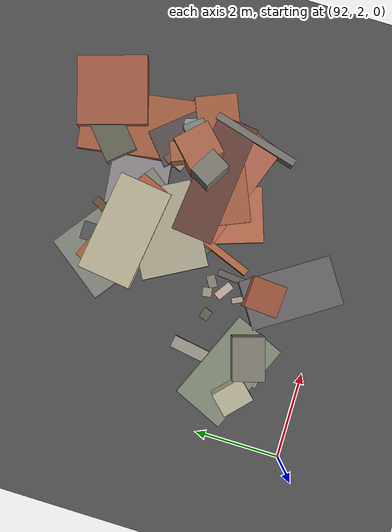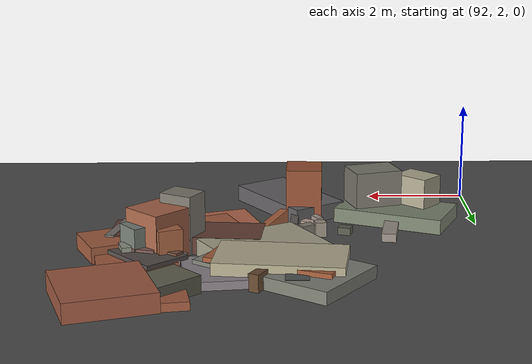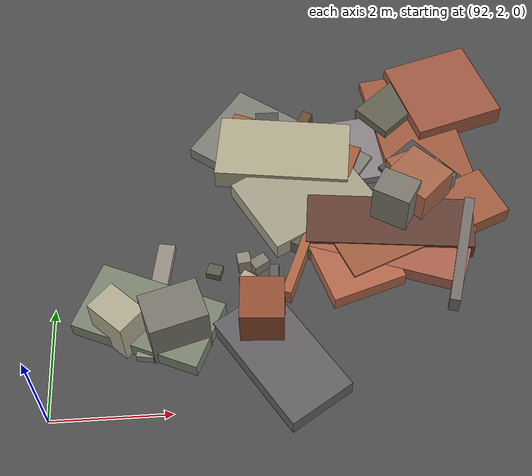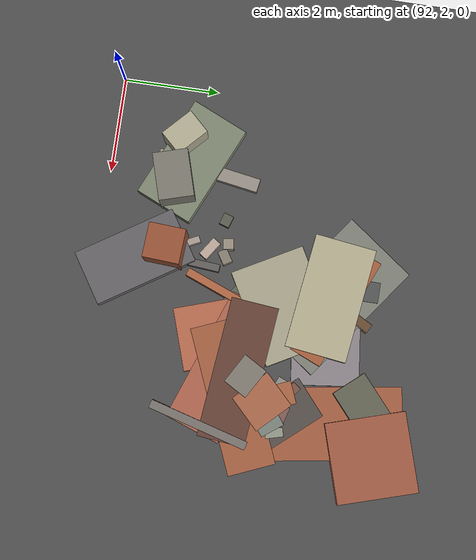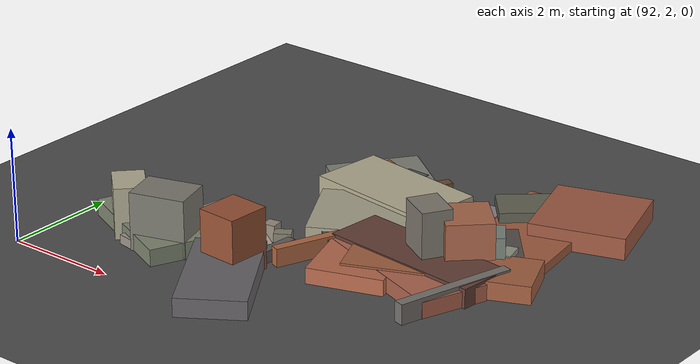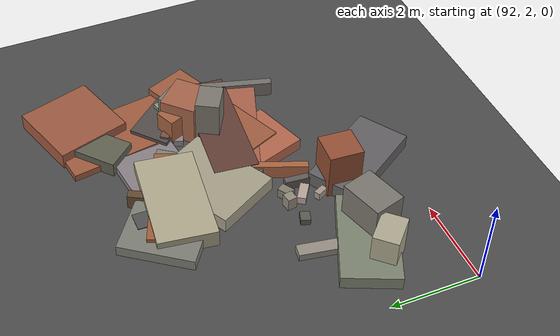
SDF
<sdf version="1.6">
 <world name="navitas_arena">
  <model name="ground_plane">
   <static>true</static>
   <link name="link">
    <collision name="collision">
     <geometry><plane><normal>0 0 1</normal><size>400 400</size></plane></geometry>
     <surface><friction><ode><mu>0.800</mu><mu2>0.800</mu2></ode></friction></surface>
    </collision>
    <visual name="visual">
     <cast_shadows>false</cast_shadows>
     <geometry><plane><normal>0 0 1</normal><size>400 400</size></plane></geometry>
     <material>
      <specular>0.04 0.04 0.04 1</specular>
      <script>
       <uri>file://media/materials/scripts/navitas_asphalt.material</uri>
       <name>Navitas/RealArenaAsphalt</name>
      </script>
     </material>
    </visual>
   </link>
  </model>
  <model name="deb_zor_22">
   <static>true</static>
   <pose>99.009 7.795 0.000 0 0 0</pose>
   <link name="link">
    <collision name="col_0">
     <pose>0.150 0.450 0.188 0.000 0.000 0.298</pose>
     <geometry><box><size>1.670 1.680 0.377</size></box></geometry>
    </collision>
    <visual name="vis_0">
     <pose>0.150 0.450 0.188 0.000 0.000 0.298</pose>
     <geometry><box><size>1.670 1.680 0.377</size></box></geometry>
     <material>
      <ambient>0.57 0.32 0.24 1</ambient>
      <diffuse>0.62 0.35 0.26 1</diffuse>
      <specular>0.05 0.05 0.045 1</specular>
     </material>
    </visual>
    <collision name="col_1">
     <pose>-0.168 0.030 0.184 0.000 0.000 2.330</pose>
     <geometry><box><size>0.727 0.487 0.368</size></box></geometry>
    </collision>
    <visual name="vis_1">
     <pose>-0.168 0.030 0.184 0.000 0.000 2.330</pose>
     <geometry><box><size>0.727 0.487 0.368</size></box></geometry>
     <material>
      <ambient>0.51 0.33 0.30 1</ambient>
      <diffuse>0.55 0.36 0.32 1</diffuse>
      <specular>0.05 0.05 0.045 1</specular>
     </material>
    </visual>
    <collision name="col_2">
     <pose>-0.404 -0.531 0.081 0.000 0.000 1.722</pose>
     <geometry><box><size>3.109 1.506 0.163</size></box></geometry>
    </collision>
    <visual name="vis_2">
     <pose>-0.404 -0.531 0.081 0.000 0.000 1.722</pose>
     <geometry><box><size>3.109 1.506 0.163</size></box></geometry>
     <material>
      <ambient>0.58 0.34 0.23 1</ambient>
      <diffuse>0.63 0.36 0.25 1</diffuse>
      <specular>0.05 0.05 0.045 1</specular>
     </material>
    </visual>
    <collision name="col_3">
     <pose>-0.752 0.249 0.169 0.000 0.000 0.716</pose>
     <geometry><box><size>1.427 0.773 0.338</size></box></geometry>
    </collision>
    <visual name="vis_3">
     <pose>-0.752 0.249 0.169 0.000 0.000 0.716</pose>
     <geometry><box><size>1.427 0.773 0.338</size></box></geometry>
     <material>
      <ambient>0.35 0.35 0.29 1</ambient>
      <diffuse>0.38 0.38 0.32 1</diffuse>
      <specular>0.05 0.05 0.045 1</specular>
     </material>
    </visual>
    <collision name="col_4">
     <pose>0.288 0.665 0.170 0.000 0.000 0.157</pose>
     <geometry><box><size>1.024 0.232 0.340</size></box></geometry>
    </collision>
    <visual name="vis_4">
     <pose>0.288 0.665 0.170 0.000 0.000 0.157</pose>
     <geometry><box><size>1.024 0.232 0.340</size></box></geometry>
     <material>
      <ambient>0.40 0.27 0.20 1</ambient>
      <diffuse>0.43 0.29 0.22 1</diffuse>
      <specular>0.05 0.05 0.045 1</specular>
     </material>
    </visual>
   </link>
  </model>
  <model name="deb_zor_63">
   <static>true</static>
   <pose>98.781 6.018 0.000 0 0 0</pose>
   <link name="link">
    <collision name="col_0">
     <pose>-0.119 -0.038 0.342 0.000 0.000 0.638</pose>
     <geometry><box><size>0.601 0.512 0.684</size></box></geometry>
    </collision>
    <visual name="vis_0">
     <pose>-0.119 -0.038 0.342 0.000 0.000 0.638</pose>
     <geometry><box><size>0.601 0.512 0.684</size></box></geometry>
     <material>
      <ambient>0.44 0.46 0.44 1</ambient>
      <diffuse>0.47 0.50 0.47 1</diffuse>
      <specular>0.05 0.05 0.045 1</specular>
     </material>
    </visual>
    <collision name="col_1">
     <pose>-0.565 0.085 0.349 0.000 0.000 1.962</pose>
     <geometry><box><size>0.778 0.471 0.699</size></box></geometry>
    </collision>
    <visual name="vis_1">
     <pose>-0.565 0.085 0.349 0.000 0.000 1.962</pose>
     <geometry><box><size>0.778 0.471 0.699</size></box></geometry>
     <material>
      <ambient>0.60 0.36 0.24 1</ambient>
      <diffuse>0.65 0.39 0.26 1</diffuse>
      <specular>0.05 0.05 0.045 1</specular>
     </material>
    </visual>
    <collision name="col_2">
     <pose>-0.227 0.195 0.150 0.000 0.000 1.291</pose>
     <geometry><box><size>0.380 0.431 0.301</size></box></geometry>
    </collision>
    <visual name="vis_2">
     <pose>-0.227 0.195 0.150 0.000 0.000 1.291</pose>
     <geometry><box><size>0.380 0.431 0.301</size></box></geometry>
     <material>
      <ambient>0.46 0.33 0.30 1</ambient>
      <diffuse>0.49 0.35 0.33 1</diffuse>
      <specular>0.05 0.05 0.045 1</specular>
     </material>
    </visual>
    <collision name="col_3">
     <pose>-0.488 0.180 0.093 0.000 0.000 2.079</pose>
     <geometry><box><size>1.215 0.234 0.185</size></box></geometry>
    </collision>
    <visual name="vis_3">
     <pose>-0.488 0.180 0.093 0.000 0.000 2.079</pose>
     <geometry><box><size>1.215 0.234 0.185</size></box></geometry>
     <material>
      <ambient>0.67 0.61 0.52 1</ambient>
      <diffuse>0.73 0.66 0.57 1</diffuse>
      <specular>0.05 0.05 0.045 1</specular>
     </material>
    </visual>
    <collision name="col_4">
     <pose>0.168 0.182 0.170 0.000 0.000 1.840</pose>
     <geometry><box><size>0.373 0.191 0.340</size></box></geometry>
    </collision>
    <visual name="vis_4">
     <pose>0.168 0.182 0.170 0.000 0.000 1.840</pose>
     <geometry><box><size>0.373 0.191 0.340</size></box></geometry>
     <material>
      <ambient>0.52 0.54 0.48 1</ambient>
      <diffuse>0.56 0.58 0.52 1</diffuse>
      <specular>0.05 0.05 0.045 1</specular>
     </material>
    </visual>
   </link>
  </model>
  <model name="deb_zor_130">
   <static>true</static>
   <pose>95.356 3.499 0.000 0 0 0</pose>
   <link name="link">
    <collision name="col_0">
     <pose>0.409 -0.680 0.165 0.000 0.000 2.145</pose>
     <geometry><box><size>2.217 1.182 0.330</size></box></geometry>
    </collision>
    <visual name="vis_0">
     <pose>0.409 -0.680 0.165 0.000 0.000 2.145</pose>
     <geometry><box><size>2.217 1.182 0.330</size></box></geometry>
     <material>
      <ambient>0.36 0.35 0.36 1</ambient>
      <diffuse>0.39 0.38 0.39 1</diffuse>
      <specular>0.05 0.05 0.045 1</specular>
     </material>
    </visual>
    <collision name="col_1">
     <pose>0.339 0.514 0.108 0.000 0.000 1.487</pose>
     <geometry><box><size>1.148 0.154 0.217</size></box></geometry>
    </collision>
    <visual name="vis_1">
     <pose>0.339 0.514 0.108 0.000 0.000 1.487</pose>
     <geometry><box><size>1.148 0.154 0.217</size></box></geometry>
     <material>
      <ambient>0.35 0.33 0.32 1</ambient>
      <diffuse>0.38 0.36 0.35 1</diffuse>
      <specular>0.05 0.05 0.045 1</specular>
     </material>
    </visual>
    <collision name="col_2">
     <pose>0.108 0.018 0.086 0.000 0.000 2.031</pose>
     <geometry><box><size>1.273 0.137 0.173</size></box></geometry>
    </collision>
    <visual name="vis_2">
     <pose>0.108 0.018 0.086 0.000 0.000 2.031</pose>
     <geometry><box><size>1.273 0.137 0.173</size></box></geometry>
     <material>
      <ambient>0.60 0.55 0.51 1</ambient>
      <diffuse>0.65 0.60 0.56 1</diffuse>
      <specular>0.05 0.05 0.045 1</specular>
     </material>
    </visual>
    <collision name="col_3">
     <pose>0.135 -0.059 0.546 0.000 0.000 -0.062</pose>
     <geometry><box><size>0.724 0.761 1.092</size></box></geometry>
    </collision>
    <visual name="vis_3">
     <pose>0.135 -0.059 0.546 0.000 0.000 -0.062</pose>
     <geometry><box><size>0.724 0.761 1.092</size></box></geometry>
     <material>
      <ambient>0.55 0.30 0.20 1</ambient>
      <diffuse>0.59 0.32 0.21 1</diffuse>
      <specular>0.05 0.05 0.045 1</specular>
     </material>
    </visual>
   </link>
  </model>
  <model name="deb_zor_140">
   <static>true</static>
   <pose>98.525 5.848 0.000 0 0 0</pose>
   <link name="link">
    <collision name="col_0">
     <pose>0.259 0.213 0.124 0.000 0.000 2.281</pose>
     <geometry><box><size>2.070 0.927 0.247</size></box></geometry>
    </collision>
    <visual name="vis_0">
     <pose>0.259 0.213 0.124 0.000 0.000 2.281</pose>
     <geometry><box><size>2.070 0.927 0.247</size></box></geometry>
     <material>
      <ambient>0.30 0.27 0.26 1</ambient>
      <diffuse>0.33 0.30 0.29 1</diffuse>
      <specular>0.05 0.05 0.045 1</specular>
     </material>
    </visual>
    <collision name="col_1">
     <pose>-0.198 -0.594 0.159 0.000 0.000 3.542</pose>
     <geometry><box><size>3.115 1.005 0.317</size></box></geometry>
    </collision>
    <visual name="vis_1">
     <pose>-0.198 -0.594 0.159 0.000 0.000 3.542</pose>
     <geometry><box><size>3.115 1.005 0.317</size></box></geometry>
     <material>
      <ambient>0.59 0.34 0.24 1</ambient>
      <diffuse>0.63 0.37 0.25 1</diffuse>
      <specular>0.05 0.05 0.045 1</specular>
     </material>
    </visual>
    <collision name="col_2">
     <pose>-0.090 0.174 0.079 0.000 0.000 2.741</pose>
     <geometry><box><size>1.298 0.275 0.157</size></box></geometry>
    </collision>
    <visual name="vis_2">
     <pose>-0.090 0.174 0.079 0.000 0.000 2.741</pose>
     <geometry><box><size>1.298 0.275 0.157</size></box></geometry>
     <material>
      <ambient>0.52 0.49 0.47 1</ambient>
      <diffuse>0.56 0.53 0.51 1</diffuse>
      <specular>0.05 0.05 0.045 1</specular>
     </material>
    </visual>
    <collision name="col_3">
     <pose>-0.170 0.008 0.478 0.000 0.000 2.346</pose>
     <geometry><box><size>0.873 0.813 0.957</size></box></geometry>
    </collision>
    <visual name="vis_3">
     <pose>-0.170 0.008 0.478 0.000 0.000 2.346</pose>
     <geometry><box><size>0.873 0.813 0.957</size></box></geometry>
     <material>
      <ambient>0.61 0.37 0.27 1</ambient>
      <diffuse>0.66 0.40 0.29 1</diffuse>
      <specular>0.05 0.05 0.045 1</specular>
     </material>
    </visual>
   </link>
  </model>
  <model name="deb_zor_156">
   <static>true</static>
   <pose>94.910 4.654 0.000 0 0 0</pose>
   <link name="link">
    <collision name="col_0">
     <pose>-0.202 -0.073 0.075 0.000 0.000 2.825</pose>
     <geometry><box><size>0.252 0.214 0.149</size></box></geometry>
    </collision>
    <visual name="vis_0">
     <pose>-0.202 -0.073 0.075 0.000 0.000 2.825</pose>
     <geometry><box><size>0.252 0.214 0.149</size></box></geometry>
     <material>
      <ambient>0.32 0.34 0.29 1</ambient>
      <diffuse>0.35 0.36 0.31 1</diffuse>
      <specular>0.05 0.05 0.045 1</specular>
     </material>
    </visual>
    <collision name="col_1">
     <pose>0.577 0.013 0.113 0.000 0.000 2.129</pose>
     <geometry><box><size>0.205 0.298 0.227</size></box></geometry>
    </collision>
    <visual name="vis_1">
     <pose>0.577 0.013 0.113 0.000 0.000 2.129</pose>
     <geometry><box><size>0.205 0.298 0.227</size></box></geometry>
     <material>
      <ambient>0.47 0.45 0.40 1</ambient>
      <diffuse>0.51 0.49 0.43 1</diffuse>
      <specular>0.05 0.05 0.045 1</specular>
     </material>
    </visual>
    <collision name="col_2">
     <pose>0.447 -0.326 0.089 0.000 0.000 2.548</pose>
     <geometry><box><size>0.445 0.192 0.178</size></box></geometry>
    </collision>
    <visual name="vis_2">
     <pose>0.447 -0.326 0.089 0.000 0.000 2.548</pose>
     <geometry><box><size>0.445 0.192 0.178</size></box></geometry>
     <material>
      <ambient>0.67 0.61 0.55 1</ambient>
      <diffuse>0.73 0.65 0.60 1</diffuse>
      <specular>0.05 0.05 0.045 1</specular>
     </material>
    </visual>
    <collision name="col_3">
     <pose>0.308 0.048 0.149 0.000 0.000 1.725</pose>
     <geometry><box><size>0.218 0.222 0.298</size></box></geometry>
    </collision>
    <visual name="vis_3">
     <pose>0.308 0.048 0.149 0.000 0.000 1.725</pose>
     <geometry><box><size>0.218 0.222 0.298</size></box></geometry>
     <material>
      <ambient>0.55 0.51 0.46 1</ambient>
      <diffuse>0.59 0.55 0.49 1</diffuse>
      <specular>0.05 0.05 0.045 1</specular>
     </material>
    </visual>
   </link>
  </model>
  <model name="deb_zor_160">
   <static>true</static>
   <pose>96.224 7.456 0.000 0 0 0</pose>
   <link name="link">
    <collision name="col_0">
     <pose>0.387 -0.493 0.083 0.000 0.000 3.257</pose>
     <geometry><box><size>2.465 1.415 0.167</size></box></geometry>
    </collision>
    <visual name="vis_0">
     <pose>0.387 -0.493 0.083 0.000 0.000 3.257</pose>
     <geometry><box><size>2.465 1.415 0.167</size></box></geometry>
     <material>
      <ambient>0.50 0.47 0.49 1</ambient>
      <diffuse>0.54 0.51 0.53 1</diffuse>
      <specular>0.05 0.05 0.045 1</specular>
     </material>
    </visual>
    <collision name="col_1">
     <pose>-0.038 -0.361 0.172 0.000 0.000 2.740</pose>
     <geometry><box><size>2.487 0.701 0.345</size></box></geometry>
    </collision>
    <visual name="vis_1">
     <pose>-0.038 -0.361 0.172 0.000 0.000 2.740</pose>
     <geometry><box><size>2.487 0.701 0.345</size></box></geometry>
     <material>
      <ambient>0.59 0.34 0.21 1</ambient>
      <diffuse>0.64 0.37 0.23 1</diffuse>
      <specular>0.05 0.05 0.045 1</specular>
     </material>
    </visual>
    <collision name="col_2">
     <pose>-0.184 -0.493 0.205 0.000 0.000 3.010</pose>
     <geometry><box><size>2.414 1.293 0.410</size></box></geometry>
    </collision>
    <visual name="vis_2">
     <pose>-0.184 -0.493 0.205 0.000 0.000 3.010</pose>
     <geometry><box><size>2.414 1.293 0.410</size></box></geometry>
     <material>
      <ambient>0.65 0.62 0.52 1</ambient>
      <diffuse>0.70 0.67 0.56 1</diffuse>
      <specular>0.05 0.05 0.045 1</specular>
     </material>
    </visual>
    <collision name="col_3">
     <pose>-0.231 -0.473 0.125 0.000 0.000 2.508</pose>
     <geometry><box><size>2.928 1.667 0.250</size></box></geometry>
    </collision>
    <visual name="vis_3">
     <pose>-0.231 -0.473 0.125 0.000 0.000 2.508</pose>
     <geometry><box><size>2.928 1.667 0.250</size></box></geometry>
     <material>
      <ambient>0.45 0.46 0.43 1</ambient>
      <diffuse>0.49 0.50 0.46 1</diffuse>
      <specular>0.05 0.05 0.045 1</specular>
     </material>
    </visual>
    <collision name="col_4">
     <pose>-0.070 -0.313 0.168 0.000 0.000 4.197</pose>
     <geometry><box><size>1.613 0.198 0.337</size></box></geometry>
    </collision>
    <visual name="vis_4">
     <pose>-0.070 -0.313 0.168 0.000 0.000 4.197</pose>
     <geometry><box><size>1.613 0.198 0.337</size></box></geometry>
     <material>
      <ambient>0.37 0.27 0.18 1</ambient>
      <diffuse>0.40 0.29 0.19 1</diffuse>
      <specular>0.05 0.05 0.045 1</specular>
     </material>
    </visual>
    <collision name="col_5">
     <pose>-0.447 0.264 0.133 0.000 0.000 3.130</pose>
     <geometry><box><size>0.430 0.460 0.266</size></box></geometry>
    </collision>
    <visual name="vis_5">
     <pose>-0.447 0.264 0.133 0.000 0.000 3.130</pose>
     <geometry><box><size>0.430 0.460 0.266</size></box></geometry>
     <material>
      <ambient>0.30 0.31 0.31 1</ambient>
      <diffuse>0.32 0.33 0.33 1</diffuse>
      <specular>0.05 0.05 0.045 1</specular>
     </material>
    </visual>
   </link>
  </model>
  <model name="deb_zor_163">
   <static>true</static>
   <pose>93.712 3.908 0.000 0 0 0</pose>
   <link name="link">
    <collision name="col_0">
     <pose>-0.000 0.142 0.084 0.000 0.000 1.407</pose>
     <geometry><box><size>2.206 0.287 0.167</size></box></geometry>
    </collision>
    <visual name="vis_0">
     <pose>-0.000 0.142 0.084 0.000 0.000 1.407</pose>
     <geometry><box><size>2.206 0.287 0.167</size></box></geometry>
     <material>
      <ambient>0.55 0.52 0.48 1</ambient>
      <diffuse>0.59 0.56 0.52 1</diffuse>
      <specular>0.05 0.05 0.045 1</specular>
     </material>
    </visual>
    <collision name="col_1">
     <pose>0.062 -0.125 0.109 0.000 0.000 1.497</pose>
     <geometry><box><size>0.448 0.382 0.217</size></box></geometry>
    </collision>
    <visual name="vis_1">
     <pose>0.062 -0.125 0.109 0.000 0.000 1.497</pose>
     <geometry><box><size>0.448 0.382 0.217</size></box></geometry>
     <material>
      <ambient>0.40 0.26 0.17 1</ambient>
      <diffuse>0.43 0.28 0.19 1</diffuse>
      <specular>0.05 0.05 0.045 1</specular>
     </material>
    </visual>
    <collision name="col_2">
     <pose>-0.110 -0.224 0.150 0.000 0.000 2.727</pose>
     <geometry><box><size>2.255 1.258 0.300</size></box></geometry>
    </collision>
    <visual name="vis_2">
     <pose>-0.110 -0.224 0.150 0.000 0.000 2.727</pose>
     <geometry><box><size>2.255 1.258 0.300</size></box></geometry>
     <material>
      <ambient>0.45 0.48 0.41 1</ambient>
      <diffuse>0.49 0.52 0.44 1</diffuse>
      <specular>0.05 0.05 0.045 1</specular>
     </material>
    </visual>
    <collision name="col_3">
     <pose>0.353 -0.503 0.517 0.000 0.000 1.859</pose>
     <geometry><box><size>0.728 0.984 1.034</size></box></geometry>
    </collision>
    <visual name="vis_3">
     <pose>0.353 -0.503 0.517 0.000 0.000 1.859</pose>
     <geometry><box><size>0.728 0.984 1.034</size></box></geometry>
     <material>
      <ambient>0.45 0.44 0.40 1</ambient>
      <diffuse>0.48 0.47 0.43 1</diffuse>
      <specular>0.05 0.05 0.045 1</specular>
     </material>
    </visual>
    <collision name="col_4">
     <pose>-0.568 -0.414 0.458 0.000 0.000 2.384</pose>
     <geometry><box><size>0.749 0.554 0.916</size></box></geometry>
    </collision>
    <visual name="vis_4">
     <pose>-0.568 -0.414 0.458 0.000 0.000 2.384</pose>
     <geometry><box><size>0.749 0.554 0.916</size></box></geometry>
     <material>
      <ambient>0.64 0.62 0.53 1</ambient>
      <diffuse>0.69 0.67 0.57 1</diffuse>
      <specular>0.05 0.05 0.045 1</specular>
     </material>
    </visual>
    <collision name="col_5">
     <pose>-0.150 -0.518 0.127 0.000 0.000 1.621</pose>
     <geometry><box><size>0.367 0.289 0.254</size></box></geometry>
    </collision>
    <visual name="vis_5">
     <pose>-0.150 -0.518 0.127 0.000 0.000 1.621</pose>
     <geometry><box><size>0.367 0.289 0.254</size></box></geometry>
     <material>
      <ambient>0.51 0.50 0.46 1</ambient>
      <diffuse>0.55 0.54 0.49 1</diffuse>
      <specular>0.05 0.05 0.045 1</specular>
     </material>
    </visual>
   </link>
  </model>
  <model name="deb_zor_187">
   <static>true</static>
   <pose>98.222 5.074 0.000 0 0 0</pose>
   <link name="link">
    <collision name="col_0">
     <pose>-0.104 0.458 0.122 0.000 0.000 0.668</pose>
     <geometry><box><size>0.282 0.415 0.244</size></box></geometry>
    </collision>
    <visual name="vis_0">
     <pose>-0.104 0.458 0.122 0.000 0.000 0.668</pose>
     <geometry><box><size>0.282 0.415 0.244</size></box></geometry>
     <material>
      <ambient>0.50 0.48 0.47 1</ambient>
      <diffuse>0.54 0.52 0.50 1</diffuse>
      <specular>0.05 0.05 0.045 1</specular>
     </material>
    </visual>
    <collision name="col_1">
     <pose>-0.285 0.265 0.118 0.000 0.000 0.216</pose>
     <geometry><box><size>1.117 0.304 0.236</size></box></geometry>
    </collision>
    <visual name="vis_1">
     <pose>-0.285 0.265 0.118 0.000 0.000 0.216</pose>
     <geometry><box><size>1.117 0.304 0.236</size></box></geometry>
     <material>
      <ambient>0.32 0.29 0.27 1</ambient>
      <diffuse>0.35 0.32 0.29 1</diffuse>
      <specular>0.05 0.05 0.045 1</specular>
     </material>
    </visual>
    <collision name="col_2">
     <pose>0.787 -0.437 0.178 0.000 0.000 1.299</pose>
     <geometry><box><size>2.145 0.178 0.356</size></box></geometry>
    </collision>
    <visual name="vis_2">
     <pose>0.787 -0.437 0.178 0.000 0.000 1.299</pose>
     <geometry><box><size>2.145 0.178 0.356</size></box></geometry>
     <material>
      <ambient>0.43 0.41 0.38 1</ambient>
      <diffuse>0.46 0.44 0.42 1</diffuse>
      <specular>0.05 0.05 0.045 1</specular>
     </material>
    </visual>
    <collision name="col_3">
     <pose>-0.466 -0.060 0.141 0.000 0.000 -0.347</pose>
     <geometry><box><size>2.908 1.204 0.282</size></box></geometry>
    </collision>
    <visual name="vis_3">
     <pose>-0.466 -0.060 0.141 0.000 0.000 -0.347</pose>
     <geometry><box><size>2.908 1.204 0.282</size></box></geometry>
     <material>
      <ambient>0.62 0.37 0.28 1</ambient>
      <diffuse>0.67 0.39 0.30 1</diffuse>
      <specular>0.05 0.05 0.045 1</specular>
     </material>
    </visual>
    <collision name="col_4">
     <pose>0.348 0.426 0.135 0.000 0.000 -0.609</pose>
     <geometry><box><size>0.296 0.436 0.269</size></box></geometry>
    </collision>
    <visual name="vis_4">
     <pose>0.348 0.426 0.135 0.000 0.000 -0.609</pose>
     <geometry><box><size>0.296 0.436 0.269</size></box></geometry>
     <material>
      <ambient>0.32 0.32 0.31 1</ambient>
      <diffuse>0.35 0.35 0.33 1</diffuse>
      <specular>0.05 0.05 0.045 1</specular>
     </material>
    </visual>
   </link>
  </model>
  <model name="deb_zor_356">
   <static>true</static>
   <pose>97.008 5.267 0.000 0 0 0</pose>
   <link name="link">
    <collision name="col_0">
     <pose>-0.446 -0.481 0.140 0.000 0.000 2.568</pose>
     <geometry><box><size>1.771 0.225 0.280</size></box></geometry>
    </collision>
    <visual name="vis_0">
     <pose>-0.446 -0.481 0.140 0.000 0.000 2.568</pose>
     <geometry><box><size>1.771 0.225 0.280</size></box></geometry>
     <material>
      <ambient>0.33 0.36 0.31 1</ambient>
      <diffuse>0.35 0.39 0.33 1</diffuse>
      <specular>0.05 0.05 0.045 1</specular>
     </material>
    </visual>
    <collision name="col_1">
     <pose>-0.739 -0.406 0.163 0.000 0.000 1.197</pose>
     <geometry><box><size>1.954 0.165 0.326</size></box></geometry>
    </collision>
    <visual name="vis_1">
     <pose>-0.739 -0.406 0.163 0.000 0.000 1.197</pose>
     <geometry><box><size>1.954 0.165 0.326</size></box></geometry>
     <material>
      <ambient>0.63 0.37 0.24 1</ambient>
      <diffuse>0.68 0.40 0.26 1</diffuse>
      <specular>0.05 0.05 0.045 1</specular>
     </material>
    </visual>
    <collision name="col_2">
     <pose>-0.068 0.266 0.079 0.000 0.000 2.108</pose>
     <geometry><box><size>1.146 0.250 0.158</size></box></geometry>
    </collision>
    <visual name="vis_2">
     <pose>-0.068 0.266 0.079 0.000 0.000 2.108</pose>
     <geometry><box><size>1.146 0.250 0.158</size></box></geometry>
     <material>
      <ambient>0.36 0.22 0.18 1</ambient>
      <diffuse>0.38 0.24 0.19 1</diffuse>
      <specular>0.05 0.05 0.045 1</specular>
     </material>
    </visual>
    <collision name="col_3">
     <pose>-0.671 0.776 0.169 0.000 0.000 0.504</pose>
     <geometry><box><size>2.080 1.579 0.337</size></box></geometry>
    </collision>
    <visual name="vis_3">
     <pose>-0.671 0.776 0.169 0.000 0.000 0.504</pose>
     <geometry><box><size>2.080 1.579 0.337</size></box></geometry>
     <material>
      <ambient>0.60 0.59 0.50 1</ambient>
      <diffuse>0.65 0.63 0.54 1</diffuse>
      <specular>0.05 0.05 0.045 1</specular>
     </material>
    </visual>
    <collision name="col_4">
     <pose>-0.138 0.138 0.140 0.000 0.000 1.891</pose>
     <geometry><box><size>3.018 1.320 0.281</size></box></geometry>
    </collision>
    <visual name="vis_4">
     <pose>-0.138 0.138 0.140 0.000 0.000 1.891</pose>
     <geometry><box><size>3.018 1.320 0.281</size></box></geometry>
     <material>
      <ambient>0.65 0.38 0.28 1</ambient>
      <diffuse>0.71 0.41 0.30 1</diffuse>
      <specular>0.05 0.05 0.045 1</specular>
     </material>
    </visual>
    <collision name="col_5">
     <pose>0.892 0.189 0.574 0.000 0.000 2.616</pose>
     <geometry><box><size>0.674 0.533 1.147</size></box></geometry>
    </collision>
    <visual name="vis_5">
     <pose>0.892 0.189 0.574 0.000 0.000 2.616</pose>
     <geometry><box><size>0.674 0.533 1.147</size></box></geometry>
     <material>
      <ambient>0.45 0.44 0.40 1</ambient>
      <diffuse>0.49 0.47 0.43 1</diffuse>
      <specular>0.05 0.05 0.045 1</specular>
     </material>
    </visual>
    <collision name="col_6">
     <pose>0.869 -0.390 0.131 0.000 0.000 2.449</pose>
     <geometry><box><size>2.060 0.305 0.262</size></box></geometry>
    </collision>
    <visual name="vis_6">
     <pose>0.869 -0.390 0.131 0.000 0.000 2.449</pose>
     <geometry><box><size>2.060 0.305 0.262</size></box></geometry>
     <material>
      <ambient>0.37 0.36 0.32 1</ambient>
      <diffuse>0.40 0.39 0.34 1</diffuse>
      <specular>0.05 0.05 0.045 1</specular>
     </material>
    </visual>
   </link>
  </model>
  <model name="deb_zor_383">
   <static>true</static>
   <pose>97.866 5.416 0.000 0 0 0</pose>
   <link name="link">
    <collision name="col_0">
     <pose>0.191 -0.397 0.153 0.000 0.000 1.144</pose>
     <geometry><box><size>0.218 0.463 0.306</size></box></geometry>
    </collision>
    <visual name="vis_0">
     <pose>0.191 -0.397 0.153 0.000 0.000 1.144</pose>
     <geometry><box><size>0.218 0.463 0.306</size></box></geometry>
     <material>
      <ambient>0.50 0.49 0.50 1</ambient>
      <diffuse>0.54 0.53 0.54 1</diffuse>
      <specular>0.05 0.05 0.045 1</specular>
     </material>
    </visual>
    <collision name="col_1">
     <pose>-0.046 -0.128 0.170 0.000 0.000 3.040</pose>
     <geometry><box><size>2.935 1.003 0.341</size></box></geometry>
    </collision>
    <visual name="vis_1">
     <pose>-0.046 -0.128 0.170 0.000 0.000 3.040</pose>
     <geometry><box><size>2.935 1.003 0.341</size></box></geometry>
     <material>
      <ambient>0.36 0.23 0.20 1</ambient>
      <diffuse>0.39 0.25 0.21 1</diffuse>
      <specular>0.05 0.05 0.045 1</specular>
     </material>
    </visual>
    <collision name="col_2">
     <pose>0.240 0.978 0.147 0.000 0.000 2.498</pose>
     <geometry><box><size>0.481 0.198 0.294</size></box></geometry>
    </collision>
    <visual name="vis_2">
     <pose>0.240 0.978 0.147 0.000 0.000 2.498</pose>
     <geometry><box><size>0.481 0.198 0.294</size></box></geometry>
     <material>
      <ambient>0.43 0.30 0.23 1</ambient>
      <diffuse>0.47 0.32 0.25 1</diffuse>
      <specular>0.05 0.05 0.045 1</specular>
     </material>
    </visual>
    <collision name="col_3">
     <pose>0.440 0.029 0.148 0.000 0.000 2.719</pose>
     <geometry><box><size>0.295 0.205 0.295</size></box></geometry>
    </collision>
    <visual name="vis_3">
     <pose>0.440 0.029 0.148 0.000 0.000 2.719</pose>
     <geometry><box><size>0.295 0.205 0.295</size></box></geometry>
     <material>
      <ambient>0.59 0.34 0.21 1</ambient>
      <diffuse>0.63 0.37 0.23 1</diffuse>
      <specular>0.05 0.05 0.045 1</specular>
     </material>
    </visual>
   </link>
  </model>
 </world>
</sdf>
